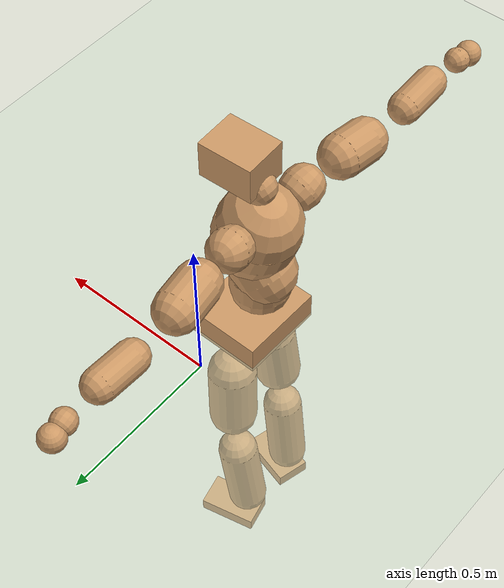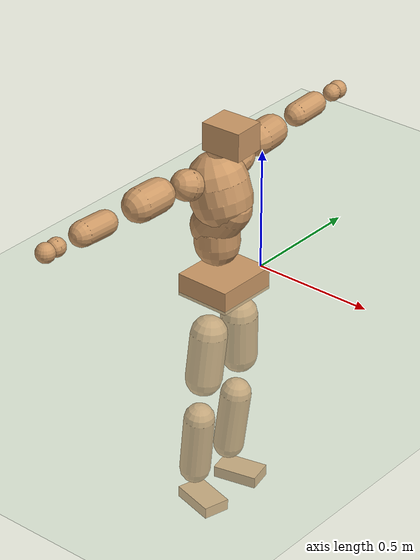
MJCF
<mujoco model="humanoid">
  <compiler coordinate="local" angle="radian"/>
  <default>
    <joint damping="0.0" armature="0.01" stiffness="0.0" limited="true"/>
    <geom conaffinity="1" condim="3" contype="7" margin="0.001" rgba="0.8 0.6 .4 1"/>
  </default>
  <asset>
    <texture type="skybox" builtin="gradient" rgb1=".4 .5 .6" rgb2="0 0 0" width="100" height="100"/>
    <texture builtin="flat" height="1278" mark="cross" markrgb="1 1 1" name="texgeom" random="0.01" rgb1="0.8 0.6 0.4" rgb2="0.8 0.6 0.4" type="cube" width="127"/>
    <texture builtin="checker" height="100" name="texplane" rgb1="0 0 0" rgb2="0.8 0.8 0.8" type="2d" width="100"/>
    <material name="MatPlane" reflectance="0.5" shininess="1" specular="1" texrepeat="60 60" texture="texplane"/>
    <material name="geom" texture="texgeom" texuniform="true"/>
  </asset>
  <worldbody>
    <light cutoff="100" diffuse="1 1 1" dir="-0 0 -1.3" directional="true" exponent="1" pos="0 0 1.3" specular=".1 .1 .1"/>
    <geom conaffinity="1" condim="3" name="floor" pos="0 0 0" rgba="0.8 0.9 0.8 1" size="100 100 .2" type="plane" material="MatPlane"/>
    <body name="Pelvis" pos="0.002 -0.2205 0.0454">
      <freejoint name="Pelvis"/>
      <geom type="box" contype="1" conaffinity="1" density="5359.375155" pos="-0.0059 0.0001 -0.0143" size="0.1154 0.1307 0.0469" quat="1.0000 0.0000 0.0000 -0.0071" name="Pelvis"/>
      <body name="L_Hip" pos="-0.0012 0.0868 -0.1007">
        <joint name="L_Hip_x" type="hinge" pos="0 0 0" axis="1 0 0" stiffness="1600" damping="160" armature="0.02" range="-180.0000 180.0000"/>
        <joint name="L_Hip_y" type="hinge" pos="0 0 0" axis="0 1 0" stiffness="1600" damping="160" armature="0.02" range="-180.0000 180.0000"/>
        <joint name="L_Hip_z" type="hinge" pos="0 0 0" axis="0 0 1" stiffness="1600" damping="160" armature="0.02" range="-180.0000 180.0000"/>
        <geom type="capsule" contype="1" conaffinity="1" density="2040.816327" size="0.0738" fromto="-0.0059 0.0070 -0.1034 -0.0169 0.0203 -0.2989" name="L_Hip"/>
        <body name="L_Knee" pos="-0.0228 0.0273 -0.4023">
          <joint name="L_Knee_x" type="hinge" pos="0 0 0" axis="1 0 0" stiffness="1600" damping="160" armature="0.02" range="-180.0000 180.0000"/>
          <joint name="L_Knee_y" type="hinge" pos="0 0 0" axis="0 1 0" stiffness="1600" damping="160" armature="0.02" range="-180.0000 180.0000"/>
          <joint name="L_Knee_z" type="hinge" pos="0 0 0" axis="0 0 1" stiffness="1600" damping="160" armature="0.02" range="-180.0000 180.0000"/>
          <geom type="capsule" contype="1" conaffinity="1" density="1234.567901" size="0.0626" fromto="-0.0115 -0.0025 -0.0918 -0.0429 -0.0093 -0.3424" name="L_Knee"/>
          <body name="L_Ankle" pos="-0.0545 -0.0118 -0.4342">
            <joint name="L_Ankle_x" type="hinge" pos="0 0 0" axis="1 0 0" stiffness="1600" damping="160" armature="0.02" range="-180.0000 180.0000"/>
            <joint name="L_Ankle_y" type="hinge" pos="0 0 0" axis="0 1 0" stiffness="1600" damping="160" armature="0.02" range="-180.0000 180.0000"/>
            <joint name="L_Ankle_z" type="hinge" pos="0 0 0" axis="0 0 1" stiffness="1600" damping="160" armature="0.02" range="-180.0000 180.0000"/>
            <geom type="box" contype="1" conaffinity="1" density="999.99999" pos="0.0630 0.0142 -0.0313" size="0.092 0.0536 0.0239" quat="0.9938 0.0000 0.0000 0.1110" name="L_Ankle"/>
            <body name="L_Toe" pos="0.126 0.0285 -0.0627">
              <joint name="L_Toe_x" type="hinge" pos="0 0 0" axis="1 0 0" stiffness="1000" damping="100" armature="0.02" range="-180.0000 180.0000"/>
              <joint name="L_Toe_y" type="hinge" pos="0 0 0" axis="0 1 0" stiffness="1000" damping="100" armature="0.02" range="-180.0000 180.0000"/>
              <joint name="L_Toe_z" type="hinge" pos="0 0 0" axis="0 0 1" stiffness="1000" damping="100" armature="0.02" range="-180.0000 180.0000"/>
              <geom type="box" contype="1" conaffinity="1" density="8284335.106805" pos="0.0000 0.0000 0.0313" size="0.0011 0.0027 0.0012" quat="0.9932 0.0000 0.0000 0.1167" name="L_Toe"/>
            </body>
          </body>
        </body>
      </body>
      <body name="R_Hip" pos="0.0024 -0.0836 -0.1012">
        <joint name="R_Hip_x" type="hinge" pos="0 0 0" axis="1 0 0" stiffness="1600" damping="160" armature="0.02" range="-180.0000 180.0000"/>
        <joint name="R_Hip_y" type="hinge" pos="0 0 0" axis="0 1 0" stiffness="1600" damping="160" armature="0.02" range="-180.0000 180.0000"/>
        <joint name="R_Hip_z" type="hinge" pos="0 0 0" axis="0 0 1" stiffness="1600" damping="160" armature="0.02" range="-180.0000 180.0000"/>
        <geom type="capsule" contype="1" conaffinity="1" density="2040.816327" size="0.073" fromto="-0.0062 -0.0090 -0.1024 -0.0184 -0.0266 -0.3024" name="R_Hip"/>
        <body name="R_Knee" pos="-0.0246 -0.0356 -0.4047">
          <joint name="R_Knee_x" type="hinge" pos="0 0 0" axis="1 0 0" stiffness="1600" damping="160" armature="0.02" range="-180.0000 180.0000"/>
          <joint name="R_Knee_y" type="hinge" pos="0 0 0" axis="0 1 0" stiffness="1600" damping="160" armature="0.02" range="-180.0000 180.0000"/>
          <joint name="R_Knee_z" type="hinge" pos="0 0 0" axis="0 0 1" stiffness="1600" damping="160" armature="0.02" range="-180.0000 180.0000"/>
          <geom type="capsule" contype="1" conaffinity="1" density="1234.567901" size="0.0624" fromto="-0.0113 0.0030 -0.0916 -0.0426 0.0113 -0.3440" name="R_Knee"/>
          <body name="R_Ankle" pos="-0.0539 0.0143 -0.4356">
            <joint name="R_Ankle_x" type="hinge" pos="0 0 0" axis="1 0 0" stiffness="1600" damping="160" armature="0.02" range="-180.0000 180.0000"/>
            <joint name="R_Ankle_y" type="hinge" pos="0 0 0" axis="0 1 0" stiffness="1600" damping="160" armature="0.02" range="-180.0000 180.0000"/>
            <joint name="R_Ankle_z" type="hinge" pos="0 0 0" axis="0 0 1" stiffness="1600" damping="160" armature="0.02" range="-180.0000 180.0000"/>
            <geom type="box" contype="1" conaffinity="1" density="999.999989" pos="0.0657 -0.0173 -0.0264" size="0.0929 0.0547 0.0235" quat="0.9917 0.0000 0.0000 -0.1283" name="R_Ankle"/>
            <body name="R_Toe" pos="0.1313 -0.0346 -0.0528">
              <joint name="R_Toe_x" type="hinge" pos="0 0 0" axis="1 0 0" stiffness="1000" damping="100" armature="0.02" range="-180.0000 180.0000"/>
              <joint name="R_Toe_y" type="hinge" pos="0 0 0" axis="0 1 0" stiffness="1000" damping="100" armature="0.02" range="-180.0000 180.0000"/>
              <joint name="R_Toe_z" type="hinge" pos="0 0 0" axis="0 0 1" stiffness="1000" damping="100" armature="0.02" range="-180.0000 180.0000"/>
              <geom type="box" contype="1" conaffinity="1" density="7656004.467695" pos="0.0000 0.0000 0.0290" size="0.001 0.0027 0.0013" quat="0.9928 0.0000 0.0000 -0.1195" name="R_Toe"/>
            </body>
          </body>
        </body>
      </body>
      <body name="Torso" pos="-0.0365 -0.0027 0.1163">
        <joint name="Torso_x" type="hinge" pos="0 0 0" axis="1 0 0" stiffness="2000" damping="200" armature="0.02" range="-180.0000 180.0000"/>
        <joint name="Torso_y" type="hinge" pos="0 0 0" axis="0 1 0" stiffness="2000" damping="200" armature="0.02" range="-180.0000 180.0000"/>
        <joint name="Torso_z" type="hinge" pos="0 0 0" axis="0 0 1" stiffness="2000" damping="200" armature="0.02" range="-180.0000 180.0000"/>
        <geom type="capsule" contype="1" conaffinity="1" density="2040.816327" size="0.0895" fromto="-0.0041 0.0017 0.0894 -0.0013 0.0005 0.0288" name="Torso"/>
        <body name="Spine" pos="-0.0054 0.0022 0.1182">
          <joint name="Spine_x" type="hinge" pos="0 0 0" axis="1 0 0" stiffness="2000" damping="200" armature="0.02" range="-180.0000 180.0000"/>
          <joint name="Spine_y" type="hinge" pos="0 0 0" axis="0 1 0" stiffness="2000" damping="200" armature="0.02" range="-180.0000 180.0000"/>
          <joint name="Spine_z" type="hinge" pos="0 0 0" axis="0 0 1" stiffness="2000" damping="200" armature="0.02" range="-180.0000 180.0000"/>
          <geom type="capsule" contype="1" conaffinity="1" density="2040.816327" size="0.091" fromto="0.0552 0.0028 0.0722 -0.0151 -0.0008 -0.0197" name="Spine"/>
          <body name="Chest" pos="0.0402 0.002 0.0525">
            <joint name="Chest_x" type="hinge" pos="0 0 0" axis="1 0 0" stiffness="2000" damping="200" armature="0.02" range="-180.0000 180.0000"/>
            <joint name="Chest_y" type="hinge" pos="0 0 0" axis="0 1 0" stiffness="2000" damping="200" armature="0.02" range="-180.0000 180.0000"/>
            <joint name="Chest_z" type="hinge" pos="0 0 0" axis="0 0 1" stiffness="2000" damping="200" armature="0.02" range="-180.0000 180.0000"/>
            <geom type="capsule" contype="1" conaffinity="1" density="2040.816327" size="0.1211" fromto="-0.0378 0.0004 0.1150 -0.0178 0.0002 0.0540" name="Chest"/>
            <body name="Neck" pos="-0.0633 0.0023 0.236">
              <joint name="Neck_x" type="hinge" pos="0 0 0" axis="1 0 0" stiffness="1000" damping="100" armature="0.02" range="-180.0000 180.0000"/>
              <joint name="Neck_y" type="hinge" pos="0 0 0" axis="0 1 0" stiffness="1000" damping="100" armature="0.02" range="-180.0000 180.0000"/>
              <joint name="Neck_z" type="hinge" pos="0 0 0" axis="0 0 1" stiffness="1000" damping="100" armature="0.02" range="-180.0000 180.0000"/>
              <geom type="capsule" contype="1" conaffinity="1" density="1000" size="0.0474" fromto="0.0329 0.0002 0.0342 0.0241 0.0002 0.0250" name="Neck"/>
              <body name="Head" pos="0.057 0.0004 0.0592">
                <joint name="Head_x" type="hinge" pos="0 0 0" axis="1 0 0" stiffness="1000" damping="100" armature="0.02" range="-180.0000 180.0000"/>
                <joint name="Head_y" type="hinge" pos="0 0 0" axis="0 1 0" stiffness="1000" damping="100" armature="0.02" range="-180.0000 180.0000"/>
                <joint name="Head_z" type="hinge" pos="0 0 0" axis="0 0 1" stiffness="1000" damping="100" armature="0.02" range="-180.0000 180.0000"/>
                <geom type="box" contype="1" conaffinity="1" density="2250.000001" pos="0.0295 0.0012 0.0306" size="0.0827 0.0659 0.0572" quat="0.9998 0.0000 0.0000 0.0199" name="Head"/>
              </body>
            </body>
            <body name="L_Thorax" pos="-0.0486 0.0923 0.1368">
              <joint name="L_Thorax_x" type="hinge" pos="0 0 0" axis="1 0 0" stiffness="1000" damping="100" armature="0.02" range="-180.0000 180.0000"/>
              <joint name="L_Thorax_y" type="hinge" pos="0 0 0" axis="0 1 0" stiffness="1000" damping="100" armature="0.02" range="-180.0000 180.0000"/>
              <joint name="L_Thorax_z" type="hinge" pos="0 0 0" axis="0 0 1" stiffness="1000" damping="100" armature="0.02" range="-180.0000 180.0000"/>
              <geom type="capsule" contype="1" conaffinity="1" density="1000" size="0.0617" fromto="-0.0083 0.0571 0.0220 -0.0058 0.0400 0.0154" name="L_Thorax"/>
              <body name="L_Shoulder" pos="-0.0142 0.0971 0.0373">
                <joint name="L_Shoulder_x" type="hinge" pos="0 0 0" axis="1 0 0" stiffness="1000" damping="100" armature="0.02" range="-720.0000 720.0000"/>
                <joint name="L_Shoulder_y" type="hinge" pos="0 0 0" axis="0 1 0" stiffness="1000" damping="100" armature="0.02" range="-720.0000 720.0000"/>
                <joint name="L_Shoulder_z" type="hinge" pos="0 0 0" axis="0 0 1" stiffness="1000" damping="100" armature="0.02" range="-720.0000 720.0000"/>
                <geom type="capsule" contype="1" conaffinity="1" density="1000" size="0.0648" fromto="-0.0121 0.0940 -0.0044 -0.0243 0.1889 -0.0089" name="L_Shoulder"/>
                <body name="L_Elbow" pos="-0.0364 0.2829 -0.0133">
                  <joint name="L_Elbow_x" type="hinge" pos="0 0 0" axis="1 0 0" stiffness="1000" damping="100" armature="0.02" range="-720.0000 720.0000"/>
                  <joint name="L_Elbow_y" type="hinge" pos="0 0 0" axis="0 1 0" stiffness="1000" damping="100" armature="0.02" range="-720.0000 720.0000"/>
                  <joint name="L_Elbow_z" type="hinge" pos="0 0 0" axis="0 0 1" stiffness="1000" damping="100" armature="0.02" range="-720.0000 720.0000"/>
                  <geom type="capsule" contype="1" conaffinity="1" density="1000" size="0.0479" fromto="0.0008 0.0778 0.0040 0.0021 0.1882 0.0096" name="L_Elbow"/>
                  <body name="L_Wrist" pos="0.0029 0.266 0.0135">
                    <joint name="L_Wrist_x" type="hinge" pos="0 0 0" axis="1 0 0" stiffness="600" damping="60" armature="0.02" range="-180.0000 180.0000"/>
                    <joint name="L_Wrist_y" type="hinge" pos="0 0 0" axis="0 1 0" stiffness="600" damping="60" armature="0.02" range="-180.0000 180.0000"/>
                    <joint name="L_Wrist_z" type="hinge" pos="0 0 0" axis="0 0 1" stiffness="600" damping="60" armature="0.02" range="-180.0000 180.0000"/>
                    <geom type="capsule" contype="1" conaffinity="1" density="1000" size="0.0354" fromto="-0.0074 0.0452 -0.0053 -0.0077 0.0471 -0.0055" name="L_Wrist"/>
                    <body name="L_Hand" pos="-0.0151 0.0923 -0.0108">
                      <joint name="L_Hand_x" type="hinge" pos="0 0 0" axis="1 0 0" stiffness="600" damping="60" armature="0.02" range="-180.0000 180.0000"/>
                      <joint name="L_Hand_y" type="hinge" pos="0 0 0" axis="0 1 0" stiffness="600" damping="60" armature="0.02" range="-180.0000 180.0000"/>
                      <joint name="L_Hand_z" type="hinge" pos="0 0 0" axis="0 0 1" stiffness="600" damping="60" armature="0.02" range="-180.0000 180.0000"/>
                      <geom type="sphere" contype="1" conaffinity="1" density="1000" size="0.0372" pos="0.0000 0.0000 0.0000" name="L_Hand"/>
                    </body>
                  </body>
                </body>
              </body>
            </body>
            <body name="R_Thorax" pos="-0.0549 -0.0928 0.1341">
              <joint name="R_Thorax_x" type="hinge" pos="0 0 0" axis="1 0 0" stiffness="1000" damping="100" armature="0.02" range="-180.0000 180.0000"/>
              <joint name="R_Thorax_y" type="hinge" pos="0 0 0" axis="0 1 0" stiffness="1000" damping="100" armature="0.02" range="-180.0000 180.0000"/>
              <joint name="R_Thorax_z" type="hinge" pos="0 0 0" axis="0 0 1" stiffness="1000" damping="100" armature="0.02" range="-180.0000 180.0000"/>
              <geom type="capsule" contype="1" conaffinity="1" density="1000" size="0.0615" fromto="-0.0081 -0.0571 0.0216 -0.0065 -0.0456 0.0172" name="R_Thorax"/>
              <body name="R_Shoulder" pos="-0.0146 -0.1026 0.0388">
                <joint name="R_Shoulder_x" type="hinge" pos="0 0 0" axis="1 0 0" stiffness="1000" damping="100" armature="0.02" range="-720.0000 720.0000"/>
                <joint name="R_Shoulder_y" type="hinge" pos="0 0 0" axis="0 1 0" stiffness="1000" damping="100" armature="0.02" range="-720.0000 720.0000"/>
                <joint name="R_Shoulder_z" type="hinge" pos="0 0 0" axis="0 0 1" stiffness="1000" damping="100" armature="0.02" range="-720.0000 720.0000"/>
                <geom type="capsule" contype="1" conaffinity="1" density="1000" size="0.0669" fromto="-0.0102 -0.0962 -0.0062 -0.0196 -0.1860 -0.0120" name="R_Shoulder"/>
                <body name="R_Elbow" pos="-0.0298 -0.2822 -0.0182">
                  <joint name="R_Elbow_x" type="hinge" pos="0 0 0" axis="1 0 0" stiffness="1000" damping="100" armature="0.02" range="-720.0000 720.0000"/>
                  <joint name="R_Elbow_y" type="hinge" pos="0 0 0" axis="0 1 0" stiffness="1000" damping="100" armature="0.02" range="-720.0000 720.0000"/>
                  <joint name="R_Elbow_z" type="hinge" pos="0 0 0" axis="0 0 1" stiffness="1000" damping="100" armature="0.02" range="-720.0000 720.0000"/>
                  <geom type="capsule" contype="1" conaffinity="1" density="1000" size="0.049" fromto="0.0004 -0.0789 0.0045 0.0011 -0.1988 0.0115" name="R_Elbow"/>
                  <body name="R_Wrist" pos="0.0015 -0.2777 0.016">
                    <joint name="R_Wrist_x" type="hinge" pos="0 0 0" axis="1 0 0" stiffness="600" damping="60" armature="0.02" range="-180.0000 180.0000"/>
                    <joint name="R_Wrist_y" type="hinge" pos="0 0 0" axis="0 1 0" stiffness="600" damping="60" armature="0.02" range="-180.0000 180.0000"/>
                    <joint name="R_Wrist_z" type="hinge" pos="0 0 0" axis="0 0 1" stiffness="600" damping="60" armature="0.02" range="-180.0000 180.0000"/>
                    <geom type="capsule" contype="1" conaffinity="1" density="1000" size="0.0369" fromto="-0.0062 -0.0466 -0.0042 -0.0065 -0.0486 -0.0044" name="R_Wrist"/>
                    <body name="R_Hand" pos="-0.0127 -0.0952 -0.0086">
                      <joint name="R_Hand_x" type="hinge" pos="0 0 0" axis="1 0 0" stiffness="600" damping="60" armature="0.02" range="-180.0000 180.0000"/>
                      <joint name="R_Hand_y" type="hinge" pos="0 0 0" axis="0 1 0" stiffness="600" damping="60" armature="0.02" range="-180.0000 180.0000"/>
                      <joint name="R_Hand_z" type="hinge" pos="0 0 0" axis="0 0 1" stiffness="600" damping="60" armature="0.02" range="-180.0000 180.0000"/>
                      <geom type="sphere" contype="1" conaffinity="1" density="1000" size="0.0384" pos="0.0000 0.0000 0.0000" name="R_Hand"/>
                    </body>
                  </body>
                </body>
              </body>
            </body>
          </body>
        </body>
      </body>
    </body>
  </worldbody>
  <actuator>
    <motor name="L_Hip_x" joint="L_Hip_x" gear="500"/>
    <motor name="L_Hip_y" joint="L_Hip_y" gear="500"/>
    <motor name="L_Hip_z" joint="L_Hip_z" gear="500"/>
    <motor name="L_Knee_x" joint="L_Knee_x" gear="500"/>
    <motor name="L_Knee_y" joint="L_Knee_y" gear="500"/>
    <motor name="L_Knee_z" joint="L_Knee_z" gear="500"/>
    <motor name="L_Ankle_x" joint="L_Ankle_x" gear="500"/>
    <motor name="L_Ankle_y" joint="L_Ankle_y" gear="500"/>
    <motor name="L_Ankle_z" joint="L_Ankle_z" gear="500"/>
    <motor name="L_Toe_x" joint="L_Toe_x" gear="500"/>
    <motor name="L_Toe_y" joint="L_Toe_y" gear="500"/>
    <motor name="L_Toe_z" joint="L_Toe_z" gear="500"/>
    <motor name="R_Hip_x" joint="R_Hip_x" gear="500"/>
    <motor name="R_Hip_y" joint="R_Hip_y" gear="500"/>
    <motor name="R_Hip_z" joint="R_Hip_z" gear="500"/>
    <motor name="R_Knee_x" joint="R_Knee_x" gear="500"/>
    <motor name="R_Knee_y" joint="R_Knee_y" gear="500"/>
    <motor name="R_Knee_z" joint="R_Knee_z" gear="500"/>
    <motor name="R_Ankle_x" joint="R_Ankle_x" gear="500"/>
    <motor name="R_Ankle_y" joint="R_Ankle_y" gear="500"/>
    <motor name="R_Ankle_z" joint="R_Ankle_z" gear="500"/>
    <motor name="R_Toe_x" joint="R_Toe_x" gear="500"/>
    <motor name="R_Toe_y" joint="R_Toe_y" gear="500"/>
    <motor name="R_Toe_z" joint="R_Toe_z" gear="500"/>
    <motor name="Torso_x" joint="Torso_x" gear="500"/>
    <motor name="Torso_y" joint="Torso_y" gear="500"/>
    <motor name="Torso_z" joint="Torso_z" gear="500"/>
    <motor name="Spine_x" joint="Spine_x" gear="500"/>
    <motor name="Spine_y" joint="Spine_y" gear="500"/>
    <motor name="Spine_z" joint="Spine_z" gear="500"/>
    <motor name="Chest_x" joint="Chest_x" gear="500"/>
    <motor name="Chest_y" joint="Chest_y" gear="500"/>
    <motor name="Chest_z" joint="Chest_z" gear="500"/>
    <motor name="Neck_x" joint="Neck_x" gear="500"/>
    <motor name="Neck_y" joint="Neck_y" gear="500"/>
    <motor name="Neck_z" joint="Neck_z" gear="500"/>
    <motor name="Head_x" joint="Head_x" gear="500"/>
    <motor name="Head_y" joint="Head_y" gear="500"/>
    <motor name="Head_z" joint="Head_z" gear="500"/>
    <motor name="L_Thorax_x" joint="L_Thorax_x" gear="500"/>
    <motor name="L_Thorax_y" joint="L_Thorax_y" gear="500"/>
    <motor name="L_Thorax_z" joint="L_Thorax_z" gear="500"/>
    <motor name="L_Shoulder_x" joint="L_Shoulder_x" gear="500"/>
    <motor name="L_Shoulder_y" joint="L_Shoulder_y" gear="500"/>
    <motor name="L_Shoulder_z" joint="L_Shoulder_z" gear="500"/>
    <motor name="L_Elbow_x" joint="L_Elbow_x" gear="500"/>
    <motor name="L_Elbow_y" joint="L_Elbow_y" gear="500"/>
    <motor name="L_Elbow_z" joint="L_Elbow_z" gear="500"/>
    <motor name="L_Wrist_x" joint="L_Wrist_x" gear="500"/>
    <motor name="L_Wrist_y" joint="L_Wrist_y" gear="500"/>
    <motor name="L_Wrist_z" joint="L_Wrist_z" gear="500"/>
    <motor name="L_Hand_x" joint="L_Hand_x" gear="500"/>
    <motor name="L_Hand_y" joint="L_Hand_y" gear="500"/>
    <motor name="L_Hand_z" joint="L_Hand_z" gear="500"/>
    <motor name="R_Thorax_x" joint="R_Thorax_x" gear="500"/>
    <motor name="R_Thorax_y" joint="R_Thorax_y" gear="500"/>
    <motor name="R_Thorax_z" joint="R_Thorax_z" gear="500"/>
    <motor name="R_Shoulder_x" joint="R_Shoulder_x" gear="500"/>
    <motor name="R_Shoulder_y" joint="R_Shoulder_y" gear="500"/>
    <motor name="R_Shoulder_z" joint="R_Shoulder_z" gear="500"/>
    <motor name="R_Elbow_x" joint="R_Elbow_x" gear="500"/>
    <motor name="R_Elbow_y" joint="R_Elbow_y" gear="500"/>
    <motor name="R_Elbow_z" joint="R_Elbow_z" gear="500"/>
    <motor name="R_Wrist_x" joint="R_Wrist_x" gear="500"/>
    <motor name="R_Wrist_y" joint="R_Wrist_y" gear="500"/>
    <motor name="R_Wrist_z" joint="R_Wrist_z" gear="500"/>
    <motor name="R_Hand_x" joint="R_Hand_x" gear="500"/>
    <motor name="R_Hand_y" joint="R_Hand_y" gear="500"/>
    <motor name="R_Hand_z" joint="R_Hand_z" gear="500"/>
  </actuator>
  <contact>
    <exclude body1="Torso" body2="Chest"/>
    <exclude body1="Head" body2="Chest"/>
    <exclude body1="R_Knee" body2="R_Toe"/>
    <exclude body1="R_Knee" body2="L_Ankle"/>
    <exclude body1="R_Knee" body2="L_Toe"/>
    <exclude body1="L_Knee" body2="L_Toe"/>
    <exclude body1="L_Knee" body2="R_Ankle"/>
    <exclude body1="L_Knee" body2="R_Toe"/>
    <exclude body1="L_Shoulder" body2="Chest"/>
    <exclude body1="R_Shoulder" body2="Chest"/>
  </contact>
  <sensor/>
  <size njmax="700" nconmax="700"/>
</mujoco>
